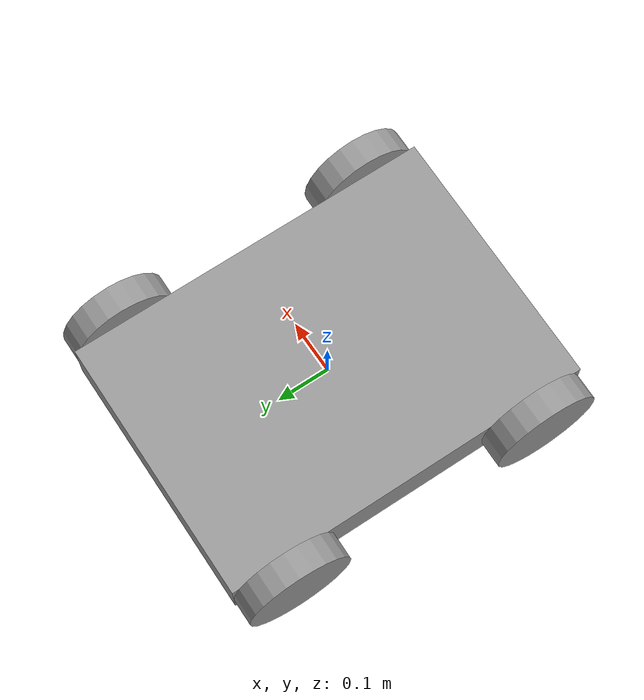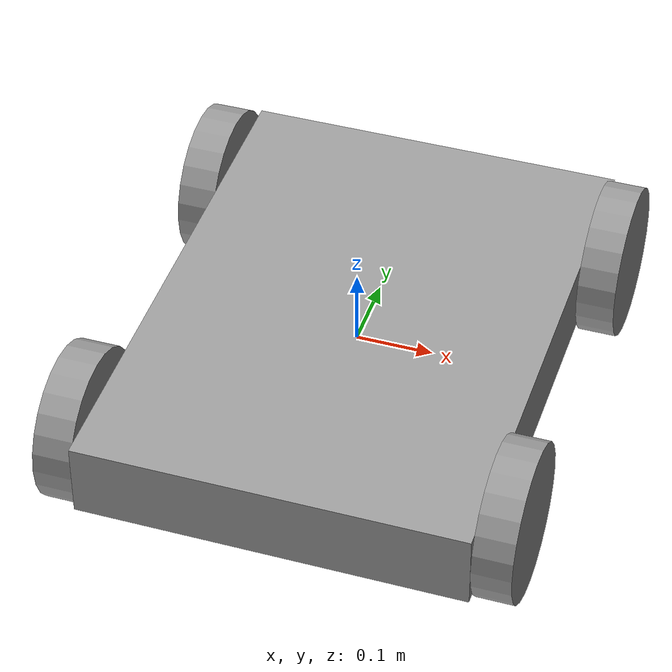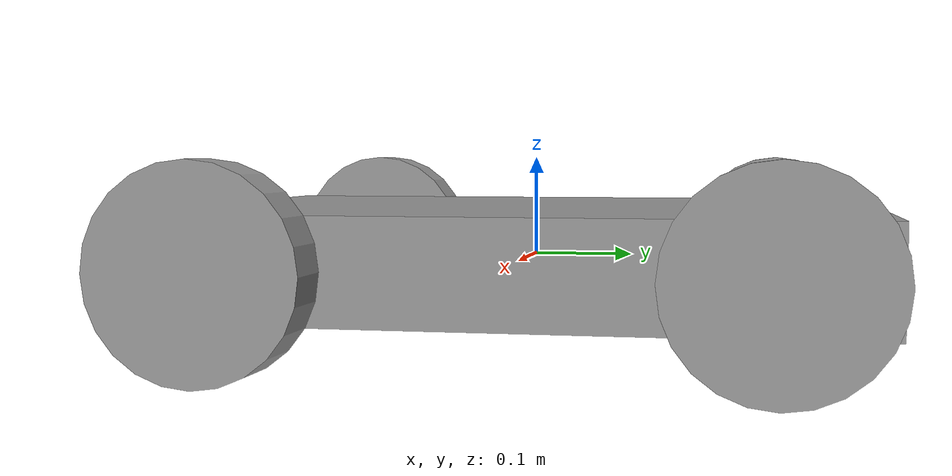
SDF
<?xml version='1.0'?>
<sdf version='1.6'>
  <model name='robot_car'>
    <model name='robot_car'>
      <model name='myrobot'>
        <link name='link_1'>
          <pose frame=''>0.275023 -0.249989 0 1.5707 0 1.5707</pose>
          <inertial>
            <mass>1</mass>
            <inertia>
              <ixx>0.145833</ixx>
              <ixy>0</ixy>
              <ixz>0</ixz>
              <iyy>0.145833</iyy>
              <iyz>0</iyz>
              <izz>0.125</izz>
            </inertia>
            <pose frame=''>0 0 0 0 -0 0</pose>
          </inertial>
          <gravity>1</gravity>
          <self_collide>0</self_collide>
          <kinematic>0</kinematic>
          <visual name='visual'>
            <pose frame=''>0 0 0 0 -0 0</pose>
            <geometry>
              <cylinder>
                <radius>0.1</radius>
                <length>0.05</length>
              </cylinder>
            </geometry>
            <material>
              <lighting>1</lighting>
              <script>
                <uri>file://media/materials/scripts/gazebo.material</uri>
                <name>Gazebo/Grey</name>
              </script>
              <shader type='pixel'>
                <normal_map>__default__</normal_map>
              </shader>
              <ambient>0.3 0.3 0.3 1</ambient>
              <diffuse>0.7 0.7 0.7 1</diffuse>
              <specular>0.01 0.01 0.01 1</specular>
              <emissive>0 0 0 1</emissive>
            </material>
            <transparency>0</transparency>
            <cast_shadows>1</cast_shadows>
          </visual>
          <collision name='collision'>
            <laser_retro>0</laser_retro>
            <max_contacts>10</max_contacts>
            <pose frame=''>0 0 0 0 -0 0</pose>
            <geometry>
              <cylinder>
                <radius>0.1</radius>
                <length>0.05</length>
              </cylinder>
            </geometry>
            <surface>
              <friction>
                <ode>
                  <mu>1</mu>
                  <mu2>1</mu2>
                  <fdir1>0 0 0</fdir1>
                  <slip1>0</slip1>
                  <slip2>0</slip2>
                </ode>
                <torsional>
                  <coefficient>1</coefficient>
                  <patch_radius>0</patch_radius>
                  <surface_radius>0</surface_radius>
                  <use_patch_radius>1</use_patch_radius>
                  <ode>
                    <slip>0</slip>
                  </ode>
                </torsional>
              </friction>
              <bounce>
                <restitution_coefficient>0</restitution_coefficient>
                <threshold>1e+06</threshold>
              </bounce>
              <contact>
                <collide_without_contact>0</collide_without_contact>
                <collide_without_contact_bitmask>1</collide_without_contact_bitmask>
                <collide_bitmask>1</collide_bitmask>
                <ode>
                  <soft_cfm>0</soft_cfm>
                  <soft_erp>0.2</soft_erp>
                  <kp>1e+13</kp>
                  <kd>1</kd>
                  <max_vel>0.01</max_vel>
                  <min_depth>0</min_depth>
                </ode>
                <bullet>
                  <split_impulse>1</split_impulse>
                  <split_impulse_penetration_threshold>-0.01</split_impulse_penetration_threshold>
                  <soft_cfm>0</soft_cfm>
                  <soft_erp>0.2</soft_erp>
                  <kp>1e+13</kp>
                  <kd>1</kd>
                </bullet>
              </contact>
            </surface>
          </collision>
          <enable_wind>0</enable_wind>
        </link>
        <link name='link_1_clone'>
          <pose frame=''>0.275019 0.249995 0 1.5707 0 1.5707</pose>
          <inertial>
            <mass>1</mass>
            <inertia>
              <ixx>0.145833</ixx>
              <ixy>0</ixy>
              <ixz>0</ixz>
              <iyy>0.145833</iyy>
              <iyz>0</iyz>
              <izz>0.125</izz>
            </inertia>
            <pose frame=''>0 0 0 0 -0 0</pose>
          </inertial>
          <self_collide>0</self_collide>
          <kinematic>0</kinematic>
          <gravity>1</gravity>
          <visual name='visual'>
            <pose frame=''>0 0 0 0 -0 0</pose>
            <geometry>
              <cylinder>
                <radius>0.1</radius>
                <length>0.05</length>
              </cylinder>
            </geometry>
            <material>
              <lighting>1</lighting>
              <script>
                <uri>file://media/materials/scripts/gazebo.material</uri>
                <name>Gazebo/Grey</name>
              </script>
              <shader type='pixel'>
                <normal_map>__default__</normal_map>
              </shader>
              <ambient>0.3 0.3 0.3 1</ambient>
              <diffuse>0.7 0.7 0.7 1</diffuse>
              <specular>0.01 0.01 0.01 1</specular>
              <emissive>0 0 0 1</emissive>
            </material>
            <transparency>0</transparency>
            <cast_shadows>1</cast_shadows>
          </visual>
          <collision name='collision'>
            <laser_retro>0</laser_retro>
            <max_contacts>10</max_contacts>
            <pose frame=''>0 0 0 0 -0 0</pose>
            <geometry>
              <cylinder>
                <radius>0.1</radius>
                <length>0.05</length>
              </cylinder>
            </geometry>
            <surface>
              <friction>
                <ode>
                  <mu>1</mu>
                  <mu2>1</mu2>
                  <fdir1>0 0 0</fdir1>
                  <slip1>0</slip1>
                  <slip2>0</slip2>
                </ode>
                <torsional>
                  <coefficient>1</coefficient>
                  <patch_radius>0</patch_radius>
                  <surface_radius>0</surface_radius>
                  <use_patch_radius>1</use_patch_radius>
                  <ode>
                    <slip>0</slip>
                  </ode>
                </torsional>
              </friction>
              <bounce>
                <restitution_coefficient>0</restitution_coefficient>
                <threshold>1e+06</threshold>
              </bounce>
              <contact>
                <collide_without_contact>0</collide_without_contact>
                <collide_without_contact_bitmask>1</collide_without_contact_bitmask>
                <collide_bitmask>1</collide_bitmask>
                <ode>
                  <soft_cfm>0</soft_cfm>
                  <soft_erp>0.2</soft_erp>
                  <kp>1e+13</kp>
                  <kd>1</kd>
                  <max_vel>0.01</max_vel>
                  <min_depth>0</min_depth>
                </ode>
                <bullet>
                  <split_impulse>1</split_impulse>
                  <split_impulse_penetration_threshold>-0.01</split_impulse_penetration_threshold>
                  <soft_cfm>0</soft_cfm>
                  <soft_erp>0.2</soft_erp>
                  <kp>1e+13</kp>
                  <kd>1</kd>
                </bullet>
              </contact>
            </surface>
          </collision>
          <enable_wind>0</enable_wind>
        </link>
        <link name='link_1_clone_0'>
          <pose frame=''>-0.27502 0.249995 0 1.5707 0 1.5707</pose>
          <inertial>
            <mass>1</mass>
            <inertia>
              <ixx>0.145833</ixx>
              <ixy>0</ixy>
              <ixz>0</ixz>
              <iyy>0.145833</iyy>
              <iyz>0</iyz>
              <izz>0.125</izz>
            </inertia>
            <pose frame=''>0 0 0 0 -0 0</pose>
          </inertial>
          <self_collide>0</self_collide>
          <kinematic>0</kinematic>
          <gravity>1</gravity>
          <visual name='visual'>
            <pose frame=''>0 0 0 0 -0 0</pose>
            <geometry>
              <cylinder>
                <radius>0.1</radius>
                <length>0.05</length>
              </cylinder>
            </geometry>
            <material>
              <lighting>1</lighting>
              <script>
                <uri>file://media/materials/scripts/gazebo.material</uri>
                <name>Gazebo/Grey</name>
              </script>
              <shader type='pixel'>
                <normal_map>__default__</normal_map>
              </shader>
              <ambient>0.3 0.3 0.3 1</ambient>
              <diffuse>0.7 0.7 0.7 1</diffuse>
              <specular>0.01 0.01 0.01 1</specular>
              <emissive>0 0 0 1</emissive>
            </material>
            <transparency>0</transparency>
            <cast_shadows>1</cast_shadows>
          </visual>
          <collision name='collision'>
            <laser_retro>0</laser_retro>
            <max_contacts>10</max_contacts>
            <pose frame=''>0 0 0 0 -0 0</pose>
            <geometry>
              <cylinder>
                <radius>0.1</radius>
                <length>0.05</length>
              </cylinder>
            </geometry>
            <surface>
              <friction>
                <ode>
                  <mu>1</mu>
                  <mu2>1</mu2>
                  <fdir1>0 0 0</fdir1>
                  <slip1>0</slip1>
                  <slip2>0</slip2>
                </ode>
                <torsional>
                  <coefficient>1</coefficient>
                  <patch_radius>0</patch_radius>
                  <surface_radius>0</surface_radius>
                  <use_patch_radius>1</use_patch_radius>
                  <ode>
                    <slip>0</slip>
                  </ode>
                </torsional>
              </friction>
              <bounce>
                <restitution_coefficient>0</restitution_coefficient>
                <threshold>1e+06</threshold>
              </bounce>
              <contact>
                <collide_without_contact>0</collide_without_contact>
                <collide_without_contact_bitmask>1</collide_without_contact_bitmask>
                <collide_bitmask>1</collide_bitmask>
                <ode>
                  <soft_cfm>0</soft_cfm>
                  <soft_erp>0.2</soft_erp>
                  <kp>1e+13</kp>
                  <kd>1</kd>
                  <max_vel>0.01</max_vel>
                  <min_depth>0</min_depth>
                </ode>
                <bullet>
                  <split_impulse>1</split_impulse>
                  <split_impulse_penetration_threshold>-0.01</split_impulse_penetration_threshold>
                  <soft_cfm>0</soft_cfm>
                  <soft_erp>0.2</soft_erp>
                  <kp>1e+13</kp>
                  <kd>1</kd>
                </bullet>
              </contact>
            </surface>
          </collision>
          <enable_wind>0</enable_wind>
        </link>
        <link name='link_1_clone_1'>
          <pose frame=''>-0.27502 -0.25 0 1.5707 0 1.5707</pose>
          <inertial>
            <mass>1</mass>
            <inertia>
              <ixx>0.145833</ixx>
              <ixy>0</ixy>
              <ixz>0</ixz>
              <iyy>0.145833</iyy>
              <iyz>0</iyz>
              <izz>0.125</izz>
            </inertia>
            <pose frame=''>0 0 0 0 -0 0</pose>
          </inertial>
          <self_collide>0</self_collide>
          <kinematic>0</kinematic>
          <gravity>1</gravity>
          <visual name='visual'>
            <pose frame=''>0 0 0 0 -0 0</pose>
            <geometry>
              <cylinder>
                <radius>0.1</radius>
                <length>0.05</length>
              </cylinder>
            </geometry>
            <material>
              <lighting>1</lighting>
              <script>
                <uri>file://media/materials/scripts/gazebo.material</uri>
                <name>Gazebo/Grey</name>
              </script>
              <shader type='pixel'>
                <normal_map>__default__</normal_map>
              </shader>
              <ambient>0.3 0.3 0.3 1</ambient>
              <diffuse>0.7 0.7 0.7 1</diffuse>
              <specular>0.01 0.01 0.01 1</specular>
              <emissive>0 0 0 1</emissive>
            </material>
            <transparency>0</transparency>
            <cast_shadows>1</cast_shadows>
          </visual>
          <collision name='collision'>
            <laser_retro>0</laser_retro>
            <max_contacts>10</max_contacts>
            <pose frame=''>0 0 0 0 -0 0</pose>
            <geometry>
              <cylinder>
                <radius>0.1</radius>
                <length>0.05</length>
              </cylinder>
            </geometry>
            <surface>
              <friction>
                <ode>
                  <mu>1</mu>
                  <mu2>1</mu2>
                  <fdir1>0 0 0</fdir1>
                  <slip1>0</slip1>
                  <slip2>0</slip2>
                </ode>
                <torsional>
                  <coefficient>1</coefficient>
                  <patch_radius>0</patch_radius>
                  <surface_radius>0</surface_radius>
                  <use_patch_radius>1</use_patch_radius>
                  <ode>
                    <slip>0</slip>
                  </ode>
                </torsional>
              </friction>
              <bounce>
                <restitution_coefficient>0</restitution_coefficient>
                <threshold>1e+06</threshold>
              </bounce>
              <contact>
                <collide_without_contact>0</collide_without_contact>
                <collide_without_contact_bitmask>1</collide_without_contact_bitmask>
                <collide_bitmask>1</collide_bitmask>
                <ode>
                  <soft_cfm>0</soft_cfm>
                  <soft_erp>0.2</soft_erp>
                  <kp>1e+13</kp>
                  <kd>1</kd>
                  <max_vel>0.01</max_vel>
                  <min_depth>0</min_depth>
                </ode>
                <bullet>
                  <split_impulse>1</split_impulse>
                  <split_impulse_penetration_threshold>-0.01</split_impulse_penetration_threshold>
                  <soft_cfm>0</soft_cfm>
                  <soft_erp>0.2</soft_erp>
                  <kp>1e+13</kp>
                  <kd>1</kd>
                </bullet>
              </contact>
            </surface>
          </collision>
          <enable_wind>0</enable_wind>
        </link>
        <link name='link_2'>
          <pose frame=''>-0 -2e-06 0 0 -0 0</pose>
          <inertial>
            <mass>1</mass>
            <inertia>
              <ixx>0.166667</ixx>
              <ixy>0</ixy>
              <ixz>0</ixz>
              <iyy>0.166667</iyy>
              <iyz>0</iyz>
              <izz>0.166667</izz>
            </inertia>
            <pose frame=''>0 0 0 0 -0 0</pose>
          </inertial>
          <gravity>1</gravity>
          <self_collide>0</self_collide>
          <kinematic>0</kinematic>
          <visual name='visual'>
            <pose frame=''>0 0 0 0 -0 0</pose>
            <geometry>
              <box>
                <size>0.5 0.7 0.1</size>
              </box>
            </geometry>
            <material>
              <lighting>1</lighting>
              <script>
                <uri>file://media/materials/scripts/gazebo.material</uri>
                <name>Gazebo/Grey</name>
              </script>
              <shader type='pixel'>
                <normal_map>__default__</normal_map>
              </shader>
              <ambient>0.3 0.3 0.3 1</ambient>
              <diffuse>0.7 0.7 0.7 1</diffuse>
              <specular>0.01 0.01 0.01 1</specular>
              <emissive>0 0 0 1</emissive>
            </material>
            <transparency>0</transparency>
            <cast_shadows>1</cast_shadows>
          </visual>
          <collision name='collision'>
            <laser_retro>0</laser_retro>
            <max_contacts>10</max_contacts>
            <pose frame=''>0 0 0 0 -0 0</pose>
            <geometry>
              <box>
                <size>0.5 0.7 0.1</size>
              </box>
            </geometry>
            <surface>
              <friction>
                <ode>
                  <mu>1</mu>
                  <mu2>1</mu2>
                  <fdir1>0 0 0</fdir1>
                  <slip1>0</slip1>
                  <slip2>0</slip2>
                </ode>
                <torsional>
                  <coefficient>1</coefficient>
                  <patch_radius>0</patch_radius>
                  <surface_radius>0</surface_radius>
                  <use_patch_radius>1</use_patch_radius>
                  <ode>
                    <slip>0</slip>
                  </ode>
                </torsional>
              </friction>
              <bounce>
                <restitution_coefficient>0</restitution_coefficient>
                <threshold>1e+06</threshold>
              </bounce>
              <contact>
                <collide_without_contact>0</collide_without_contact>
                <collide_without_contact_bitmask>1</collide_without_contact_bitmask>
                <collide_bitmask>1</collide_bitmask>
                <ode>
                  <soft_cfm>0</soft_cfm>
                  <soft_erp>0.2</soft_erp>
                  <kp>1e+13</kp>
                  <kd>1</kd>
                  <max_vel>0.01</max_vel>
                  <min_depth>0</min_depth>
                </ode>
                <bullet>
                  <split_impulse>1</split_impulse>
                  <split_impulse_penetration_threshold>-0.01</split_impulse_penetration_threshold>
                  <soft_cfm>0</soft_cfm>
                  <soft_erp>0.2</soft_erp>
                  <kp>1e+13</kp>
                  <kd>1</kd>
                </bullet>
              </contact>
            </surface>
          </collision>
          <enable_wind>0</enable_wind>
        </link>
        <joint name='link_2_JOINT_10' type='revolute'>
          <parent>link_2</parent>
          <child>link_1</child>
          <pose frame=''>0 0 0 0 -0 0</pose>
          <axis>
            <xyz>1 0 0</xyz>
            <use_parent_model_frame>0</use_parent_model_frame>
            <limit>
              <lower>-1.79769e+308</lower>
              <upper>1.79769e+308</upper>
              <effort>-1</effort>
              <velocity>-1</velocity>
            </limit>
            <dynamics>
              <spring_reference>0</spring_reference>
              <spring_stiffness>0</spring_stiffness>
              <damping>0</damping>
            </dynamics>
          </axis>
          <physics>
            <ode>
              <limit>
                <cfm>0</cfm>
                <erp>0.2</erp>
              </limit>
              <suspension>
                <cfm>0</cfm>
                <erp>0.2</erp>
              </suspension>
            </ode>
          </physics>
        </joint>
        <joint name='link_2_JOINT_11' type='revolute'>
          <parent>link_2</parent>
          <child>link_1_clone_0</child>
          <pose frame=''>0 0 0 0 -0 0</pose>
          <axis>
            <xyz>1 0 0</xyz>
            <use_parent_model_frame>0</use_parent_model_frame>
            <limit>
              <lower>-1.79769e+308</lower>
              <upper>1.79769e+308</upper>
              <effort>-1</effort>
              <velocity>-1</velocity>
            </limit>
            <dynamics>
              <spring_reference>0</spring_reference>
              <spring_stiffness>0</spring_stiffness>
              <damping>0</damping>
            </dynamics>
          </axis>
          <physics>
            <ode>
              <limit>
                <cfm>0</cfm>
                <erp>0.2</erp>
              </limit>
              <suspension>
                <cfm>0</cfm>
                <erp>0.2</erp>
              </suspension>
            </ode>
          </physics>
        </joint>
        <joint name='link_2_JOINT_12' type='revolute'>
          <parent>link_2</parent>
          <child>link_1_clone_1</child>
          <pose frame=''>0 0 0 0 -0 0</pose>
          <axis>
            <xyz>1 0 0</xyz>
            <use_parent_model_frame>0</use_parent_model_frame>
            <limit>
              <lower>-1.79769e+308</lower>
              <upper>1.79769e+308</upper>
              <effort>-1</effort>
              <velocity>-1</velocity>
            </limit>
            <dynamics>
              <spring_reference>0</spring_reference>
              <spring_stiffness>0</spring_stiffness>
              <damping>0</damping>
            </dynamics>
          </axis>
          <physics>
            <ode>
              <limit>
                <cfm>0</cfm>
                <erp>0.2</erp>
              </limit>
              <suspension>
                <cfm>0</cfm>
                <erp>0.2</erp>
              </suspension>
            </ode>
          </physics>
        </joint>
        <joint name='link_2_JOINT_3' type='revolute'>
          <parent>link_2</parent>
          <child>link_1</child>
          <pose frame=''>0 0 0 0 -0 0</pose>
          <axis>
            <xyz>1 0 0</xyz>
            <use_parent_model_frame>0</use_parent_model_frame>
            <limit>
              <lower>-1.79769e+308</lower>
              <upper>1.79769e+308</upper>
              <effort>-1</effort>
              <velocity>-1</velocity>
            </limit>
            <dynamics>
              <spring_reference>0</spring_reference>
              <spring_stiffness>0</spring_stiffness>
              <damping>0</damping>
            </dynamics>
          </axis>
          <physics>
            <ode>
              <limit>
                <cfm>0</cfm>
                <erp>0.2</erp>
              </limit>
              <suspension>
                <cfm>0</cfm>
                <erp>0.2</erp>
              </suspension>
            </ode>
          </physics>
        </joint>
        <joint name='link_2_JOINT_4' type='revolute'>
          <parent>link_2</parent>
          <child>link_1_clone</child>
          <pose frame=''>0 0 0 0 -0 0</pose>
          <axis>
            <xyz>1 0 0</xyz>
            <use_parent_model_frame>0</use_parent_model_frame>
            <limit>
              <lower>-1.79769e+308</lower>
              <upper>1.79769e+308</upper>
              <effort>-1</effort>
              <velocity>-1</velocity>
            </limit>
            <dynamics>
              <spring_reference>0</spring_reference>
              <spring_stiffness>0</spring_stiffness>
              <damping>0</damping>
            </dynamics>
          </axis>
          <physics>
            <ode>
              <limit>
                <cfm>0</cfm>
                <erp>0.2</erp>
              </limit>
              <suspension>
                <cfm>0</cfm>
                <erp>0.2</erp>
              </suspension>
            </ode>
          </physics>
        </joint>
        <joint name='link_2_JOINT_5' type='revolute'>
          <parent>link_2</parent>
          <child>link_1_clone_0</child>
          <pose frame=''>0 0 0 0 -0 0</pose>
          <axis>
            <xyz>1 0 0</xyz>
            <use_parent_model_frame>0</use_parent_model_frame>
            <limit>
              <lower>-1.79769e+308</lower>
              <upper>1.79769e+308</upper>
              <effort>-1</effort>
              <velocity>-1</velocity>
            </limit>
            <dynamics>
              <spring_reference>0</spring_reference>
              <spring_stiffness>0</spring_stiffness>
              <damping>0</damping>
            </dynamics>
          </axis>
          <physics>
            <ode>
              <limit>
                <cfm>0</cfm>
                <erp>0.2</erp>
              </limit>
              <suspension>
                <cfm>0</cfm>
                <erp>0.2</erp>
              </suspension>
            </ode>
          </physics>
        </joint>
        <joint name='link_2_JOINT_6' type='revolute'>
          <parent>link_2</parent>
          <child>link_1_clone_1</child>
          <pose frame=''>0 0 0 0 -0 0</pose>
          <axis>
            <xyz>1 0 0</xyz>
            <use_parent_model_frame>0</use_parent_model_frame>
            <limit>
              <lower>-1.79769e+308</lower>
              <upper>1.79769e+308</upper>
              <effort>-1</effort>
              <velocity>-1</velocity>
            </limit>
            <dynamics>
              <spring_reference>0</spring_reference>
              <spring_stiffness>0</spring_stiffness>
              <damping>0</damping>
            </dynamics>
          </axis>
          <physics>
            <ode>
              <limit>
                <cfm>0</cfm>
                <erp>0.2</erp>
              </limit>
              <suspension>
                <cfm>0</cfm>
                <erp>0.2</erp>
              </suspension>
            </ode>
          </physics>
        </joint>
        <joint name='link_2_JOINT_7' type='revolute'>
          <parent>link_2</parent>
          <child>link_1_clone_1</child>
          <pose frame=''>0 0 0 0 -0 0</pose>
          <axis>
            <xyz>1 0 0</xyz>
            <use_parent_model_frame>0</use_parent_model_frame>
            <limit>
              <lower>-1.79769e+308</lower>
              <upper>1.79769e+308</upper>
              <effort>-1</effort>
              <velocity>-1</velocity>
            </limit>
            <dynamics>
              <spring_reference>0</spring_reference>
              <spring_stiffness>0</spring_stiffness>
              <damping>0</damping>
            </dynamics>
          </axis>
          <physics>
            <ode>
              <limit>
                <cfm>0</cfm>
                <erp>0.2</erp>
              </limit>
              <suspension>
                <cfm>0</cfm>
                <erp>0.2</erp>
              </suspension>
            </ode>
          </physics>
        </joint>
        <joint name='link_2_JOINT_9' type='revolute'>
          <parent>link_2</parent>
          <child>link_1_clone</child>
          <pose frame=''>0 0 0 0 -0 0</pose>
          <axis>
            <xyz>1 0 0</xyz>
            <use_parent_model_frame>0</use_parent_model_frame>
            <limit>
              <lower>-1.79769e+308</lower>
              <upper>1.79769e+308</upper>
              <effort>-1</effort>
              <velocity>-1</velocity>
            </limit>
            <dynamics>
              <spring_reference>0</spring_reference>
              <spring_stiffness>0</spring_stiffness>
              <damping>0</damping>
            </dynamics>
          </axis>
          <physics>
            <ode>
              <limit>
                <cfm>0</cfm>
                <erp>0.2</erp>
              </limit>
              <suspension>
                <cfm>0</cfm>
                <erp>0.2</erp>
              </suspension>
            </ode>
          </physics>
        </joint>
        <static>0</static>
        <allow_auto_disable>1</allow_auto_disable>
        <pose frame=''>-0 4.4e-05 0 0 -0 0</pose>
      </model>
      <static>0</static>
      <allow_auto_disable>1</allow_auto_disable>
      <pose frame=''>4e-06 -2.3e-05 0 0 -0 0</pose>
    </model>
    <static>0</static>
    <allow_auto_disable>1</allow_auto_disable>
  </model>
</sdf>
